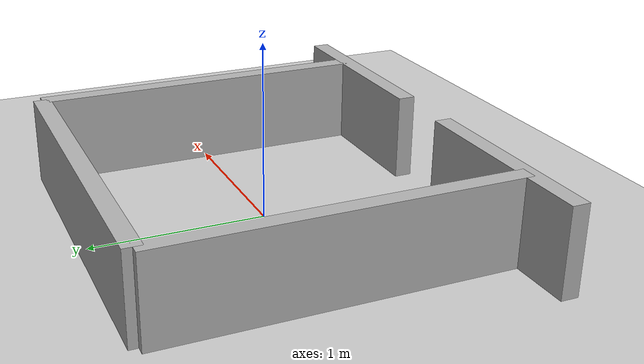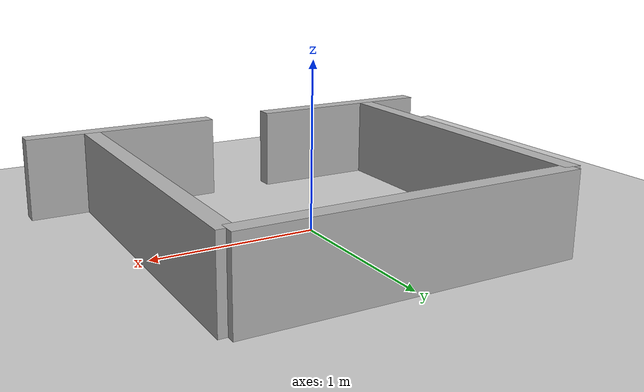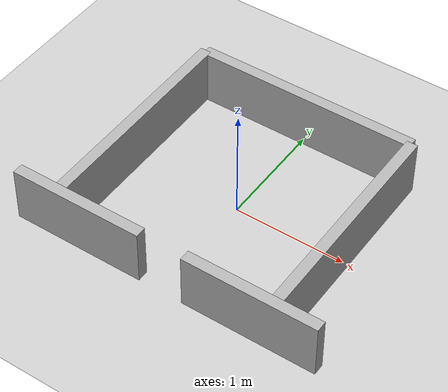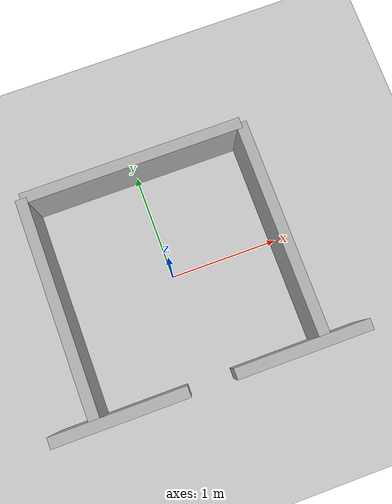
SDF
<?xml version="1.0" ?>
<sdf version="1.6">
  <world name="square_world_with_passage">
    <!-- Luz -->
    <include>
      <uri>model://sun</uri>
    </include>

    <!-- Plano de chão -->
    <include>
      <uri>model://ground_plane</uri>
    </include>

    <!-- Paredes do quadrado -->
    <model name="wall_1_left">
      <pose>-0.8 -1 0.25 0 0 0</pose> <!-- Ajustada para deixar a passagem de 40cm -->
      <static>true</static>
      <link name="link">
        <collision name="collision">
          <geometry>
            <box>
              <size>1.2 0.1 0.5</size> <!-- Comprimento reduzido para criar abertura -->
            </box>
          </geometry>
        </collision>
        <visual name="visual">
          <geometry>
            <box>
              <size>1.2 0.1 0.5</size>
            </box>
          </geometry>
          <material>
            <ambient>0.7 0.7 0.7 1</ambient>
          </material>
        </visual>
      </link>
    </model>

    <model name="wall_1_right">
      <pose>0.8 -1 0.25 0 0 0</pose> <!-- Ajustada para a outra parte da passagem -->
      <static>true</static>
      <link name="link">
        <collision name="collision">
          <geometry>
            <box>
              <size>1.2 0.1 0.5</size>
            </box>
          </geometry>
        </collision>
        <visual name="visual">
          <geometry>
            <box>
              <size>1.2 0.1 0.5</size>
            </box>
          </geometry>
          <material>
            <ambient>0.7 0.7 0.7 1</ambient>
          </material>
        </visual>
      </link>
    </model>

    <model name="wall_2">
      <pose>1 0 0.25 0 0 1.5708</pose> <!-- Rotacionada em 90 graus para formar a lateral direita -->
      <static>true</static>
      <link name="link">
        <collision name="collision">
          <geometry>
            <box>
              <size>2 0.1 0.5</size>
            </box>
          </geometry>
        </collision>
        <visual name="visual">
          <geometry>
            <box>
              <size>2 0.1 0.5</size>
            </box>
          </geometry>
          <material>
            <ambient>0.7 0.7 0.7 1</ambient>
          </material>
        </visual>
      </link>
    </model>

    <model name="wall_3">
      <pose>0 1 0.25 0 0 0</pose> <!-- Centralizada no eixo Y e na posição 1m -->
      <static>true</static>
      <link name="link">
        <collision name="collision">
          <geometry>
            <box>
              <size>2 0.1 0.5</size>
            </box>
          </geometry>
        </collision>
        <visual name="visual">
          <geometry>
            <box>
              <size>2 0.1 0.5</size>
            </box>
          </geometry>
          <material>
            <ambient>0.7 0.7 0.7 1</ambient>
          </material>
        </visual>
      </link>
    </model>

    <model name="wall_4">
      <pose>-1 0 0.25 0 0 1.5708</pose> <!-- Rotacionada em 90 graus para formar a lateral esquerda -->
      <static>true</static>
      <link name="link">
        <collision name="collision">
          <geometry>
            <box>
              <size>2 0.1 0.5</size>
            </box>
          </geometry>
        </collision>
        <visual name="visual">
          <geometry>
            <box>
              <size>2 0.1 0.5</size>
            </box>
          </geometry>
          <material>
            <ambient>0.7 0.7 0.7 1</ambient>
          </material>
        </visual>
      </link>
    </model>
  </world>
</sdf>
